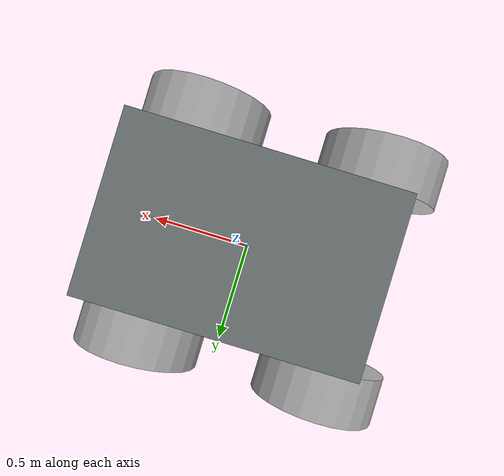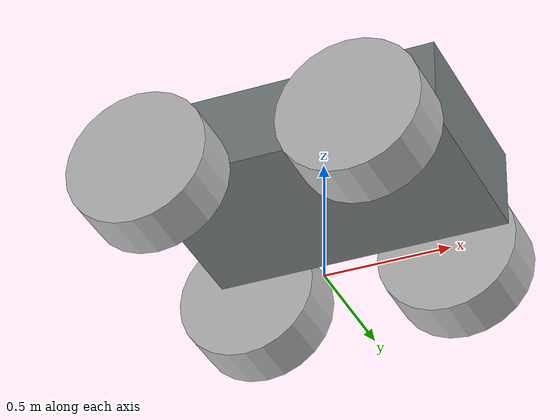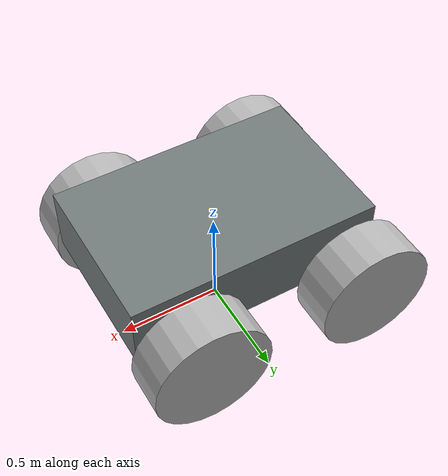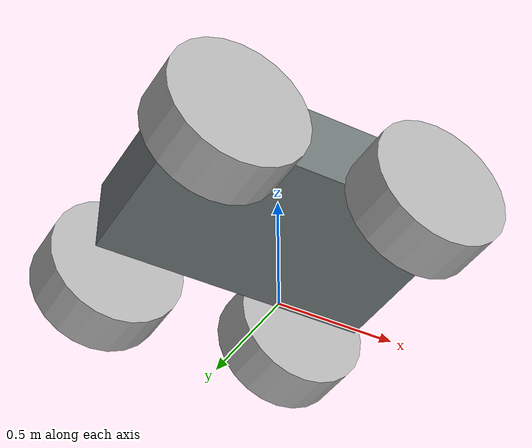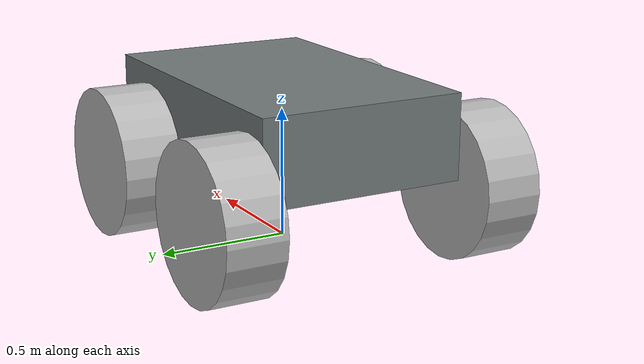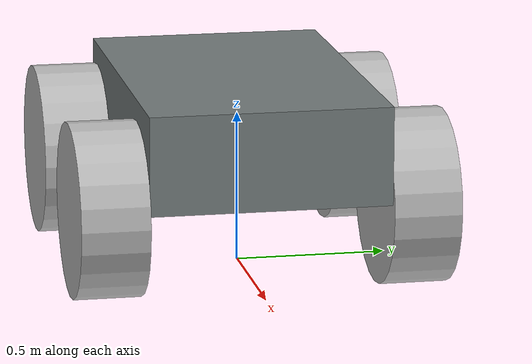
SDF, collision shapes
<?xml version="1.0"?>
<sdf version="1.9">
  <model name="warthog_02m_pro_4wd_chassis">
    <pose>0 0 0 0 0 0</pose>
    <static>false</static>

    <link name="base_link">
      <pose>0 0 0 0 0 0</pose>
      <inertial>
        <mass>120.000</mass>
        <inertia>
          <ixx>18.0</ixx>
          <iyy>24.0</iyy>
          <izz>30.0</izz>
        </inertia>
      </inertial>
      <visual name="cad_visual">
        <geometry>
          <mesh>
            <uri>model://warthog_02m_pro_4wd_chassis/meshes/chassis_visual.stl</uri>
            <scale>0.001 0.001 0.001</scale>
          </mesh>
        </geometry>
        <material>
          <diffuse>0.45 0.48 0.48 1</diffuse>
          <specular>0.15 0.15 0.15 1</specular>
        </material>
      </visual>
      <collision name="body_collision">
        <pose>0 0 0.480 0 0 0</pose>
        <geometry>
          <box>
            <size>1.200 0.780 0.320</size>
          </box>
        </geometry>
      </collision>
    </link>

    <link name="front_left_wheel_link">
      <pose>0.343 0.500 0.285 -1.57079632679 0 0</pose>
      <inertial>
        <mass>12.000</mass>
        <inertia>
          <ixx>0.380</ixx>
          <iyy>0.380</iyy>
          <izz>0.070</izz>
        </inertia>
      </inertial>
      <collision name="collision">
        <geometry>
          <cylinder>
            <radius>0.285</radius>
            <length>0.220</length>
          </cylinder>
        </geometry>
        <surface>
          <friction>
            <ode>
              <mu>1.2</mu>
              <mu2>1.2</mu2>
              <fdir1>0 0 1</fdir1>
            </ode>
          </friction>
        </surface>
      </collision>
    </link>
    <link name="front_right_wheel_link">
      <pose>0.343 -0.500 0.285 -1.57079632679 0 0</pose>
      <inertial>
        <mass>12.000</mass>
        <inertia>
          <ixx>0.380</ixx>
          <iyy>0.380</iyy>
          <izz>0.070</izz>
        </inertia>
      </inertial>
      <collision name="collision">
        <geometry>
          <cylinder>
            <radius>0.285</radius>
            <length>0.220</length>
          </cylinder>
        </geometry>
        <surface>
          <friction>
            <ode>
              <mu>1.2</mu>
              <mu2>1.2</mu2>
              <fdir1>0 0 1</fdir1>
            </ode>
          </friction>
        </surface>
      </collision>
    </link>
    <link name="rear_left_wheel_link">
      <pose>-0.498 0.500 0.285 -1.57079632679 0 0</pose>
      <inertial>
        <mass>12.000</mass>
        <inertia>
          <ixx>0.380</ixx>
          <iyy>0.380</iyy>
          <izz>0.070</izz>
        </inertia>
      </inertial>
      <collision name="collision">
        <geometry>
          <cylinder>
            <radius>0.285</radius>
            <length>0.220</length>
          </cylinder>
        </geometry>
        <surface>
          <friction>
            <ode>
              <mu>1.2</mu>
              <mu2>1.2</mu2>
              <fdir1>0 0 1</fdir1>
            </ode>
          </friction>
        </surface>
      </collision>
    </link>
    <link name="rear_right_wheel_link">
      <pose>-0.498 -0.500 0.285 -1.57079632679 0 0</pose>
      <inertial>
        <mass>12.000</mass>
        <inertia>
          <ixx>0.380</ixx>
          <iyy>0.380</iyy>
          <izz>0.070</izz>
        </inertia>
      </inertial>
      <collision name="collision">
        <geometry>
          <cylinder>
            <radius>0.285</radius>
            <length>0.220</length>
          </cylinder>
        </geometry>
        <surface>
          <friction>
            <ode>
              <mu>1.2</mu>
              <mu2>1.2</mu2>
              <fdir1>0 0 1</fdir1>
            </ode>
          </friction>
        </surface>
      </collision>
    </link>

    <joint name="front_left_wheel_joint" type="revolute">
      <parent>base_link</parent>
      <child>front_left_wheel_link</child>
      <axis>
        <xyz>0 0 1</xyz>
        <limit>
          <lower>-1e16</lower>
          <upper>1e16</upper>
        </limit>
        <dynamics>
          <damping>0.2</damping>
        </dynamics>
      </axis>
    </joint>
    <joint name="front_right_wheel_joint" type="revolute">
      <parent>base_link</parent>
      <child>front_right_wheel_link</child>
      <axis>
        <xyz>0 0 1</xyz>
        <limit>
          <lower>-1e16</lower>
          <upper>1e16</upper>
        </limit>
        <dynamics>
          <damping>0.2</damping>
        </dynamics>
      </axis>
    </joint>
    <joint name="rear_left_wheel_joint" type="revolute">
      <parent>base_link</parent>
      <child>rear_left_wheel_link</child>
      <axis>
        <xyz>0 0 1</xyz>
        <limit>
          <lower>-1e16</lower>
          <upper>1e16</upper>
        </limit>
        <dynamics>
          <damping>0.2</damping>
        </dynamics>
      </axis>
    </joint>
    <joint name="rear_right_wheel_joint" type="revolute">
      <parent>base_link</parent>
      <child>rear_right_wheel_link</child>
      <axis>
        <xyz>0 0 1</xyz>
        <limit>
          <lower>-1e16</lower>
          <upper>1e16</upper>
        </limit>
        <dynamics>
          <damping>0.2</damping>
        </dynamics>
      </axis>
    </joint>

    <plugin filename="gz-sim-diff-drive-system" name="gz::sim::systems::DiffDrive">
      <left_joint>front_left_wheel_joint</left_joint>
      <left_joint>rear_left_wheel_joint</left_joint>
      <right_joint>front_right_wheel_joint</right_joint>
      <right_joint>rear_right_wheel_joint</right_joint>
      <wheel_separation>1.000</wheel_separation>
      <wheel_radius>0.285</wheel_radius>
      <max_linear_velocity>0.30</max_linear_velocity>
      <max_linear_acceleration>0.50</max_linear_acceleration>
      <max_angular_velocity>0.80</max_angular_velocity>
      <max_angular_acceleration>1.00</max_angular_acceleration>
      <topic>/cmd_vel</topic>
      <odom_topic>/odom</odom_topic>
      <tf_topic>/tf</tf_topic>
      <frame_id>odom</frame_id>
      <child_frame_id>base_link</child_frame_id>
      <odom_publish_frequency>50</odom_publish_frequency>
    </plugin>
  </model>
</sdf>
